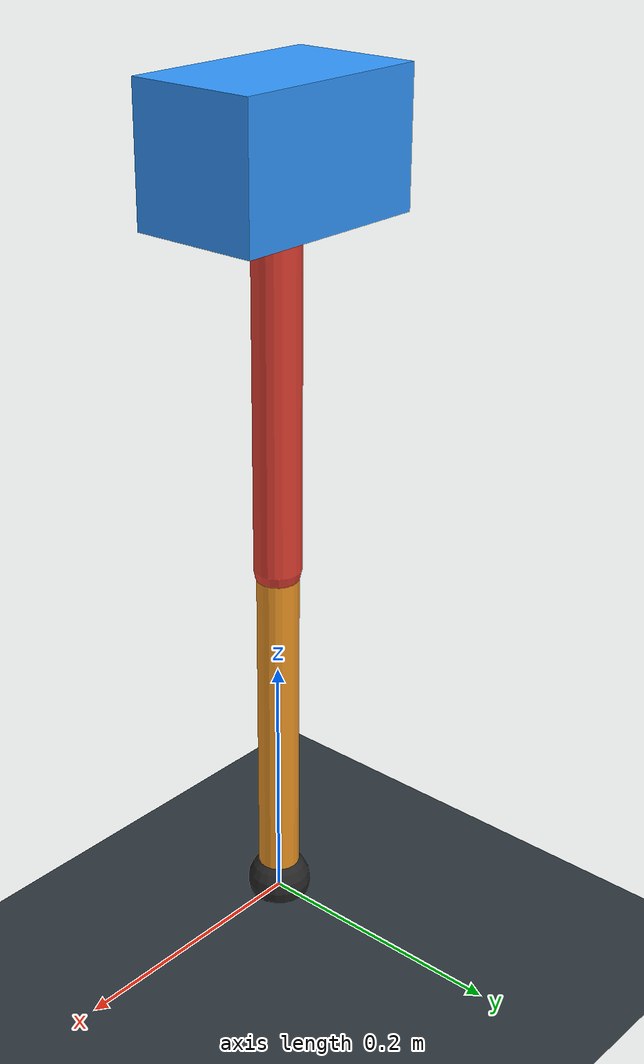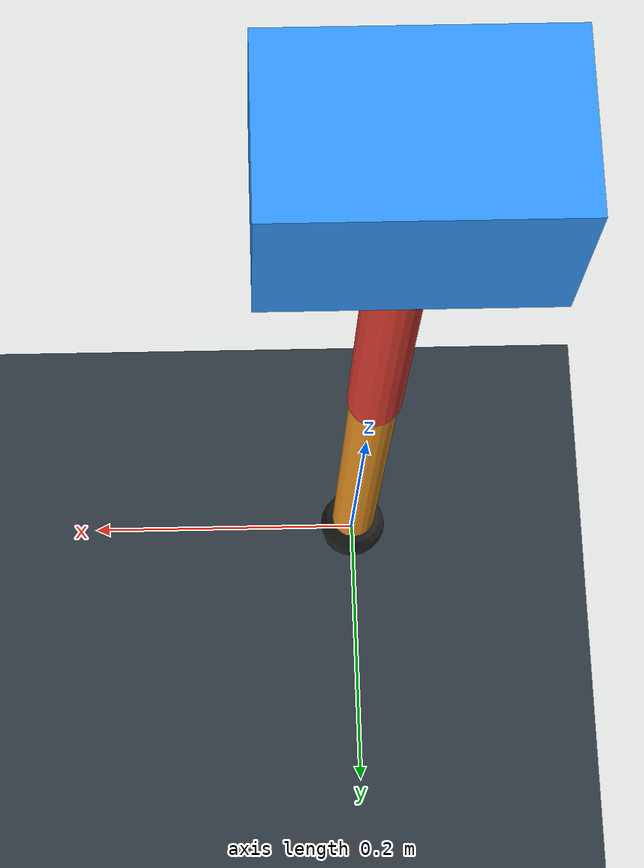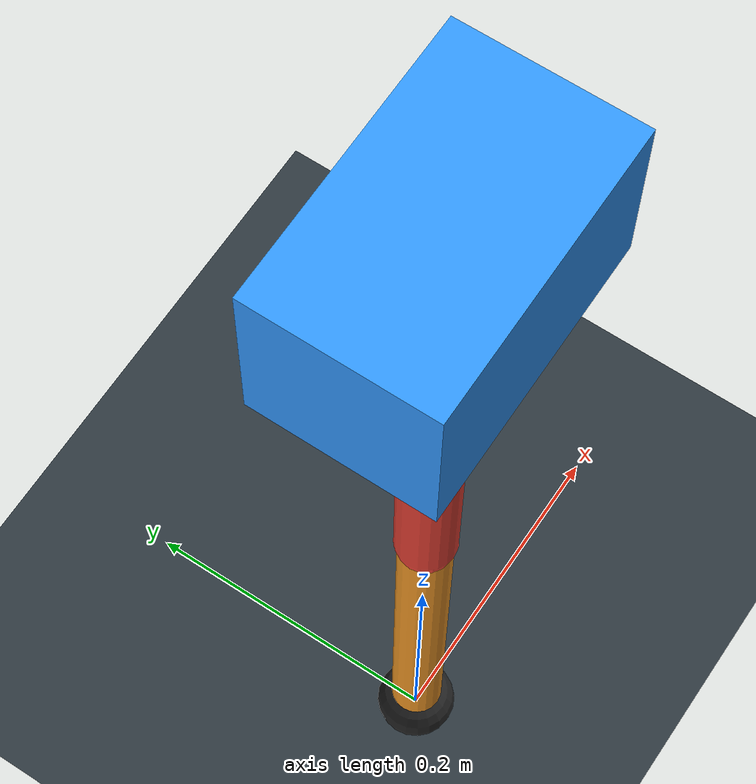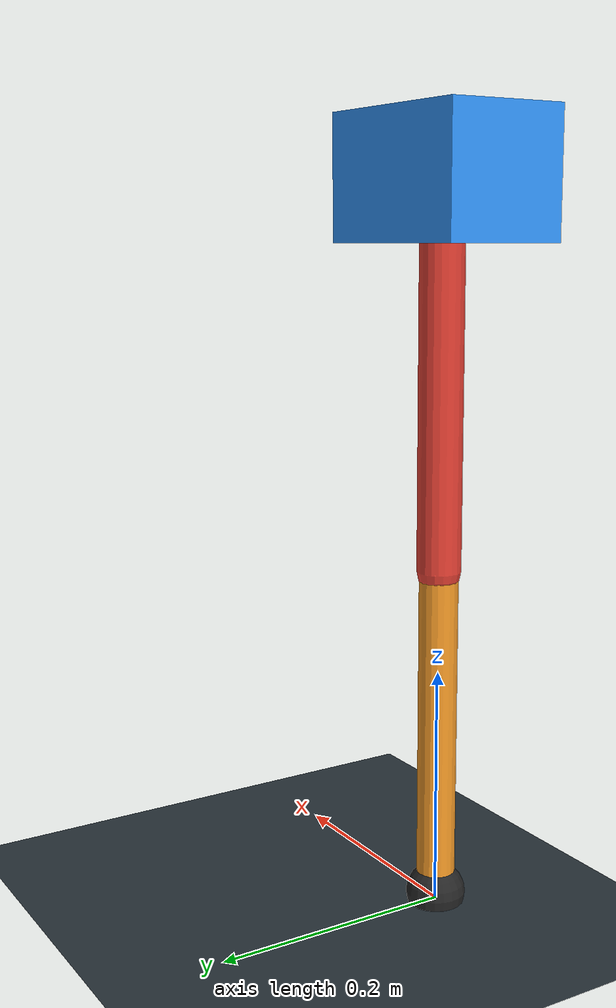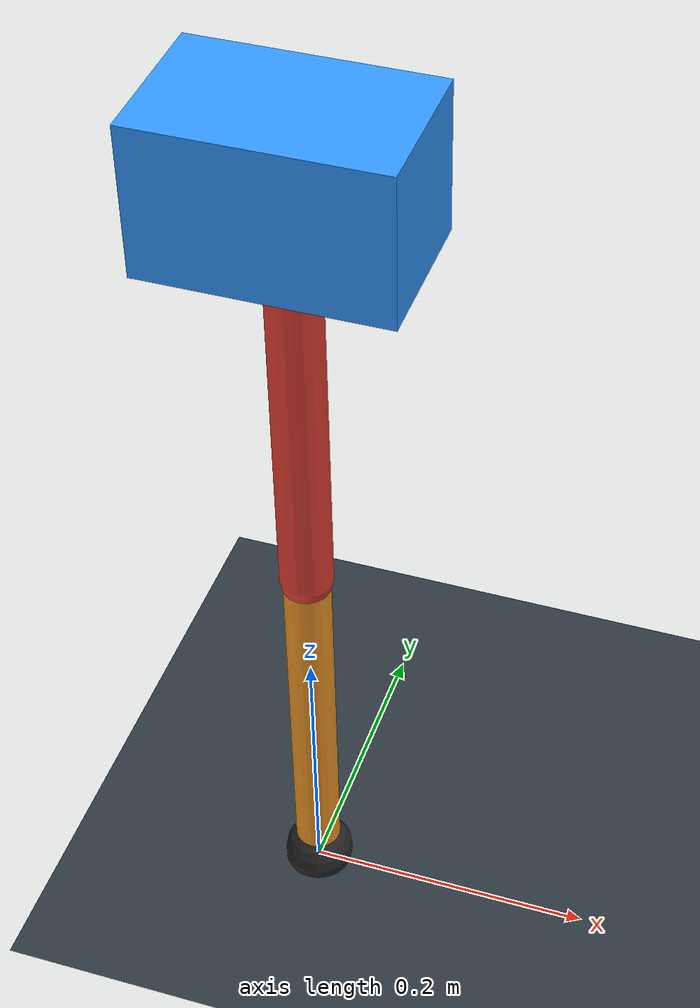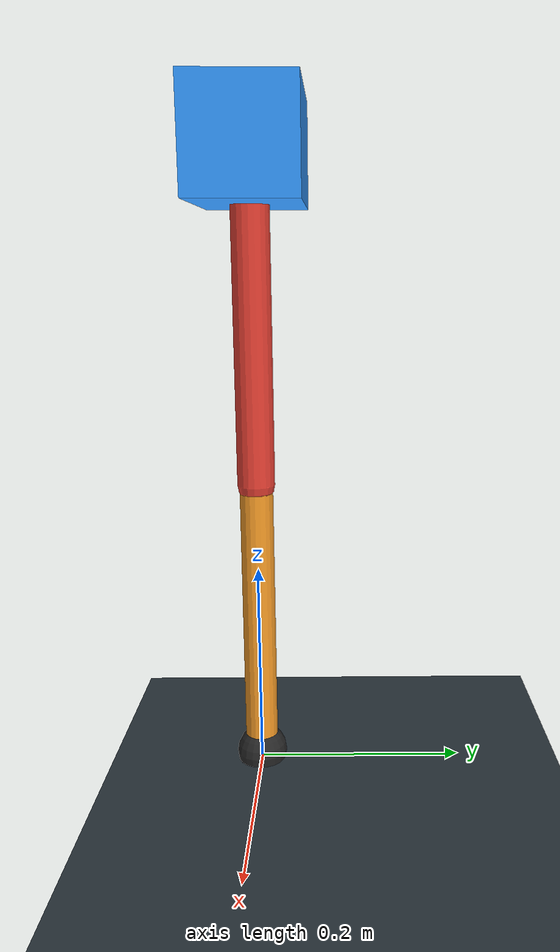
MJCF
<mujoco model="single_axis_two_bar">
  <compiler angle="radian" inertiafromgeom="true"/>
  <option timestep="0.001" integrator="implicitfast" gravity="0 0 -9.81"/>
  <default>
    <joint damping="0.08"/>
    <geom friction="1.2 0.01 0.0001" condim="3"/>
  </default>
  <worldbody>
    <geom name="floor" type="plane" size="5 5 0.1" rgba="0.18 0.22 0.25 1"/>
    <body name="carriage" pos="0 0 0.5952152715232562">
      <joint name="pole_slide" type="slide" axis="0 0 1"/>
      <geom name="payload" type="box" size="0.08 0.05 0.05" mass="3.5839539540664833" rgba="0.2 0.6 1 1"/>
      <body name="thigh" pos="0 0 0">
        <joint name="hip" type="hinge" axis="0 1 0"/>
        <geom name="thigh_link" type="capsule" fromto="0 0 0 0 0 -0.3095782771562219" size="0.018" mass="0.22057861318982352" rgba="0.9 0.25 0.2 1"/>
        <body name="shank" pos="0 0 -0.3095782771562219">
          <joint name="knee" type="hinge" axis="0 1 0"/>
          <geom name="shank_link" type="capsule" fromto="0 0 0 0 0 -0.27827251822857824" size="0.016" mass="0.19827284628477054" rgba="0.95 0.6 0.15 1"/>
          <geom name="foot" type="sphere" pos="0 0 -0.27827251822857824" size="0.025" mass="0.03" rgba="0.15 0.15 0.15 1"/>
          <site name="toe" pos="0 0 -0.27827251822857824" size="0.008"/>
        </body>
      </body>
    </body>
  </worldbody>
  <actuator>
    <motor name="hip_motor" joint="hip" ctrlrange="-125.73642530190479 125.73642530190479"/>
    <motor name="knee_motor" joint="knee" ctrlrange="-72.31321631983336 72.31321631983336"/>
  </actuator>
</mujoco>
